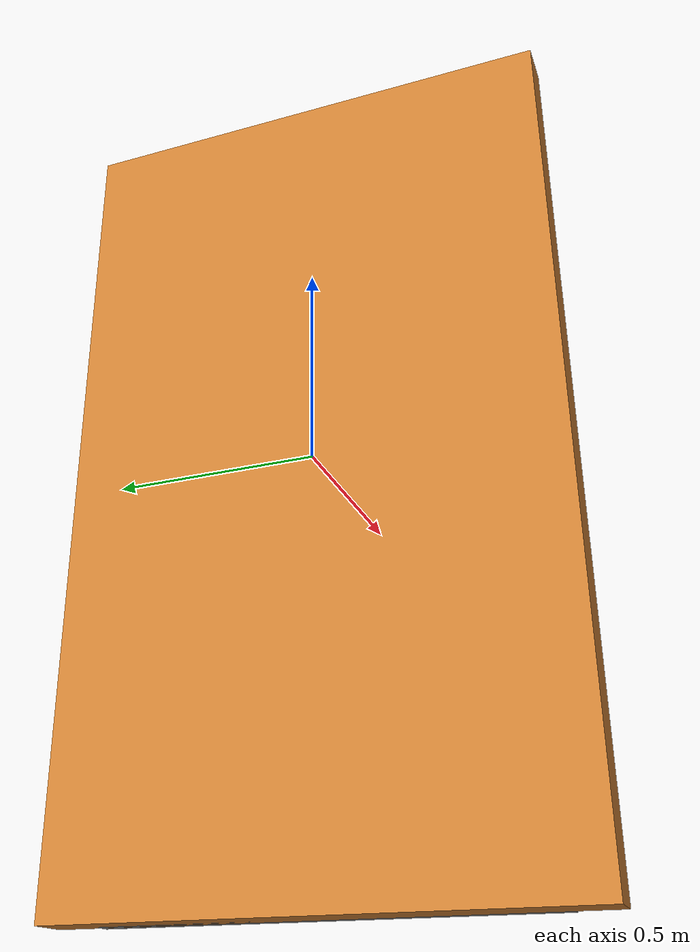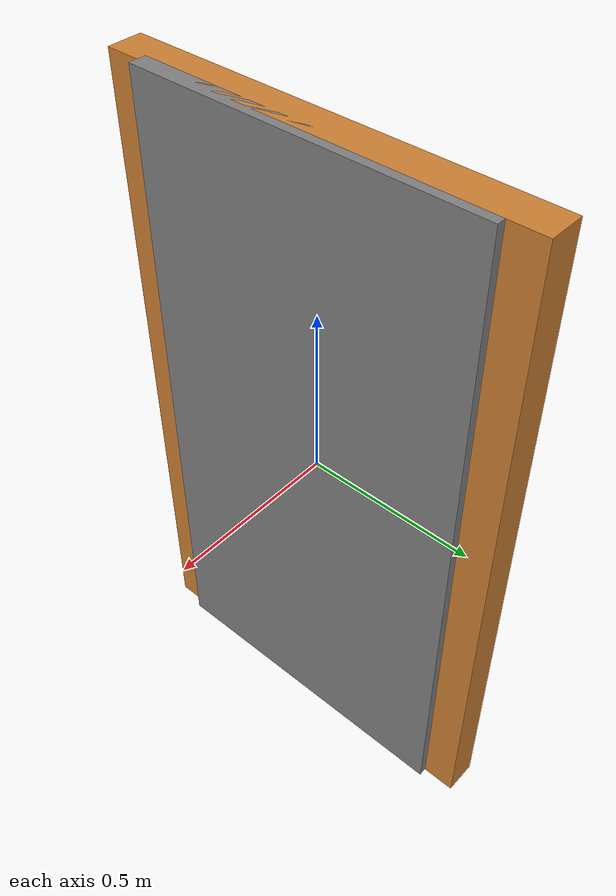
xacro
<?xml version="1.0"?>
<robot name="sliding_door" xmlns:xacro="http://www.ros.org/wiki/xacro">

  <!-- ====               LINKS & JOINT                ==== -->

  <!-- Base link to connect everything to -->
  <link name="door_base_link"/>

  <joint name="frame_joint" type="fixed">
    <parent link="door_base_link"/>
    <child link="door_frame"/>
    <origin xyz="0 0 0" rpy="0 0 0"/>
  </joint>

  <!-- Door Frame (The static part) -->
  <link name="door_frame">
    <visual>
      <geometry>
        <box size="0.1 1.2 2.0"/>
      </geometry>
      <material name="wood">
        <color rgba="0.8 0.5 0.2 1.0"/>
      </material>
    </visual>
    <collision>
      <geometry>
        <box size="0.1 1.2 2.0"/>
      </geometry>
    </collision>
  </link>

  <!-- Door Panel (The moving part) -->
  <link name="door">
    <inertial>
      <mass value="10.0"/>
      <inertia ixx="1.0" ixy="0" ixz="0" iyy="1.0" iyz="0" izz="1.0"/>
    </inertial>
    <visual>
      <geometry>
        <box size="0.05 1.0 2.0"/>
      </geometry>
      <material name="grey">
        <color rgba="0.5 0.5 0.5 1.0"/>
      </material>
    </visual>
    <collision>
      <geometry>
        <box size="0.05 1.0 2.0"/>
      </geometry>
    </collision>
  </link>

  <!-- The Prismatic (Sliding) Joint -->
  <joint name="door_joint" type="prismatic">
    <parent link="door_frame"/>
    <child link="door"/>
    <origin xyz="0.05 0 0" rpy="0 0 0"/>
    <axis xyz="0 1 0"/>
    <limit lower="0" upper="0.9" effort="100" velocity="1.0"/>
  </joint>

  <!-- ====      TRANSMISSION & PLUGIN (THE BRAIN)     ==== -->

  <!-- Transmission: Connects the virtual motor to the joint -->
  <transmission name="door_trans">
    <type>transmission_interface/SimpleTransmission</type>
    <joint name="door_joint">
      <hardwareInterface>hardware_interface/PositionJointInterface</hardwareInterface>
    </joint>
    <actuator name="door_motor">
      <hardwareInterface>hardware_interface/PositionJointInterface</hardwareInterface>
      <mechanicalReduction>1</mechanicalReduction>
    </actuator>
  </transmission>

  <!-- Gazebo Control Plugin: Connects transmissions to ROS controllers -->
  <gazebo>
    <plugin name="gazebo_ros_control" filename="libgazebo_ros_control.so">
      <robotNamespace>/sliding_door</robotNamespace>
    </plugin>
  </gazebo>

</robot>
